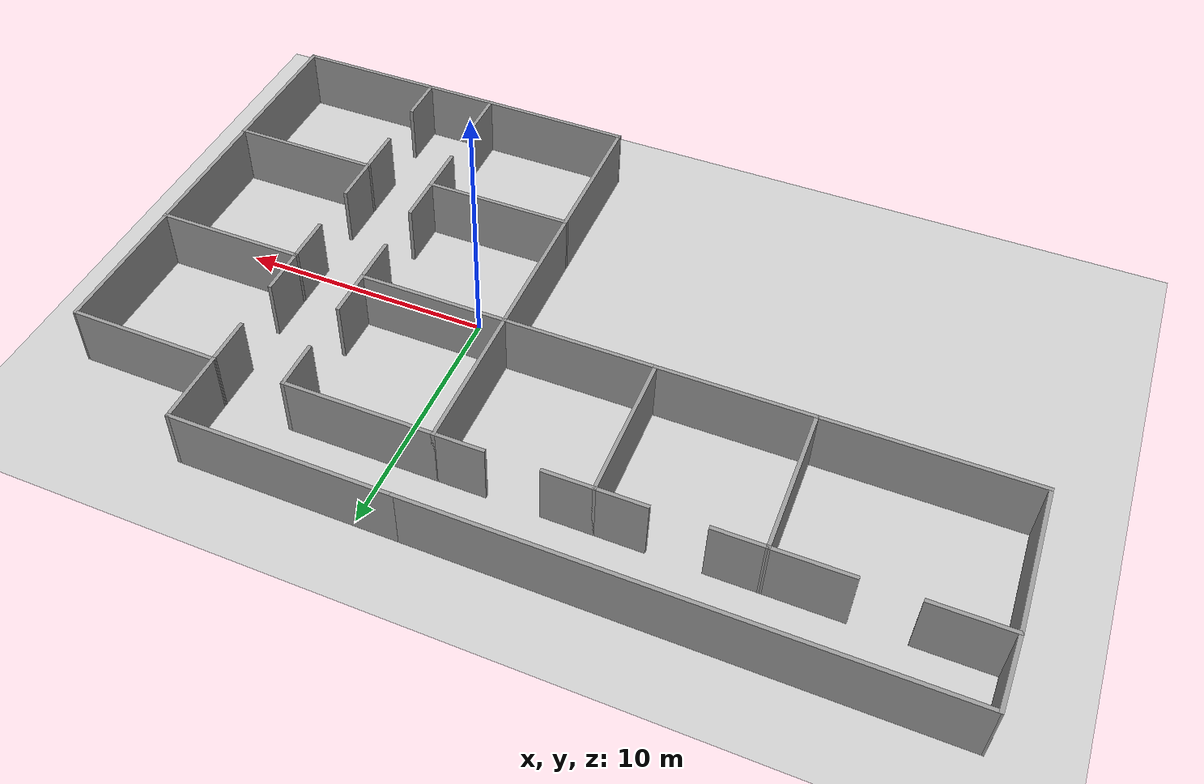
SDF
<?xml version="1.0" ?>
<sdf version="1.4">
  <world name="default">
    <include>
      <uri>model://sun</uri>
    </include>
    <!-- A ground plane -->
    <include>
      <uri>model://ground_plane</uri>
    </include>
    <include>
      <uri>model://asphalt_plane</uri>
    </include>
    <physics name='default_physics' default='0' type='ode'>
      <gravity>0 0 -9.8066</gravity>
      <ode>
        <solver>
          <type>quick</type>
          <iters>10</iters>
          <sor>1.3</sor>
          <use_dynamic_moi_rescaling>0</use_dynamic_moi_rescaling>
        </solver>
        <constraints>
          <cfm>0</cfm>
          <erp>0.2</erp>
          <contact_max_correcting_vel>100</contact_max_correcting_vel>
          <contact_surface_layer>0.001</contact_surface_layer>
        </constraints>
      </ode>
      <max_step_size>0.004</max_step_size>
      <real_time_factor>1</real_time_factor>
      <real_time_update_rate>250</real_time_update_rate>
      <magnetic_field>6.0e-6 2.3e-5 -4.2e-5</magnetic_field>
    </physics>
    <model name='Office_2'>
    <pose>-4.24252 -0.072373 0 0 -0 0</pose>
    <link name='Wall_1'>
      <collision name='Wall_1_Collision'>
        <geometry>
          <box>
            <size>6 0.15 2.5</size>
          </box>
        </geometry>
        <pose>0 0 1.25 0 -0 0</pose>
      </collision>
      <visual name='Wall_1_Visual'>
        <pose>0 0 1.25 0 -0 0</pose>
        <geometry>
          <box>
            <size>6 0.15 2.5</size>
          </box>
        </geometry>
        <material>
          <script>
            <uri>file://media/materials/scripts/gazebo.material</uri>
            <name>Gazebo/Grey</name>
          </script>
          <ambient>1 1 1 1</ambient>
        </material>
        <meta>
          <layer>0</layer>
        </meta>
      </visual>
      <pose>2.48957 -1.41258 0 0 -0 1.5708</pose>
    </link>
    <link name='Wall_10'>
      <collision name='Wall_10_Collision'>
        <geometry>
          <box>
            <size>6 0.15 2.5</size>
          </box>
        </geometry>
        <pose>0 0 1.25 0 -0 0</pose>
      </collision>
      <visual name='Wall_10_Visual'>
        <pose>0 0 1.25 0 -0 0</pose>
        <geometry>
          <box>
            <size>6 0.15 2.5</size>
          </box>
        </geometry>
        <material>
          <script>
            <uri>file://media/materials/scripts/gazebo.material</uri>
            <name>Gazebo/Grey</name>
          </script>
          <ambient>1 1 1 1</ambient>
        </material>
        <meta>
          <layer>0</layer>
        </meta>
      </visual>
      <pose>2.48957 4.43742 0 0 -0 1.5708</pose>
    </link>
    <link name='Wall_107'>
      <collision name='Wall_107_Collision'>
        <geometry>
          <box>
            <size>6 0.15 2.5</size>
          </box>
        </geometry>
        <pose>0 0 1.25 0 -0 0</pose>
      </collision>
      <visual name='Wall_107_Visual'>
        <pose>0 0 1.25 0 -0 0</pose>
        <geometry>
          <box>
            <size>6 0.15 2.5</size>
          </box>
        </geometry>
        <material>
          <script>
            <uri>file://media/materials/scripts/gazebo.material</uri>
            <name>Gazebo/Grey</name>
          </script>
          <ambient>1 1 1 1</ambient>
        </material>
        <meta>
          <layer>0</layer>
        </meta>
      </visual>
      <pose>-6.28543 1.51242 0 0 -0 3.14159</pose>
    </link>
    <link name='Wall_108'>
      <collision name='Wall_108_Collision'>
        <geometry>
          <box>
            <size>6.00008 0.15 2.5</size>
          </box>
        </geometry>
        <pose>0 0 1.25 0 -0 0</pose>
      </collision>
      <visual name='Wall_108_Visual'>
        <pose>0 0 1.25 0 -0 0</pose>
        <geometry>
          <box>
            <size>6.00008 0.15 2.5</size>
          </box>
        </geometry>
        <material>
          <script>
            <uri>file://media/materials/scripts/gazebo.material</uri>
            <name>Gazebo/Grey</name>
          </script>
          <ambient>1 1 1 1</ambient>
        </material>
        <meta>
          <layer>0</layer>
        </meta>
      </visual>
      <pose>-9.22572 4.43742 0 0 -0 1.57603</pose>
    </link>
    <link name='Wall_111'>
      <collision name='Wall_111_Collision'>
        <geometry>
          <box>
            <size>8 0.15 2.5</size>
          </box>
        </geometry>
        <pose>0 0 1.25 0 -0 0</pose>
      </collision>
      <visual name='Wall_111_Visual'>
        <pose>0 0 1.25 0 -0 0</pose>
        <geometry>
          <box>
            <size>8 0.15 2.5</size>
          </box>
        </geometry>
        <material>
          <script>
            <uri>file://media/materials/scripts/gazebo.material</uri>
            <name>Gazebo/Grey</name>
          </script>
          <ambient>1 1 1 1</ambient>
        </material>
        <meta>
          <layer>0</layer>
        </meta>
      </visual>
      <pose>-13.1354 1.51242 0 0 -0 3.14159</pose>
    </link>
    <link name='Wall_112'>
      <collision name='Wall_112_Collision'>
        <geometry>
          <box>
            <size>6.00008 0.15 2.5</size>
          </box>
        </geometry>
        <pose>0 0 1.25 0 -0 0</pose>
      </collision>
      <visual name='Wall_112_Visual'>
        <pose>0 0 1.25 0 -0 0</pose>
        <geometry>
          <box>
            <size>6.00008 0.15 2.5</size>
          </box>
        </geometry>
        <material>
          <script>
            <uri>file://media/materials/scripts/gazebo.material</uri>
            <name>Gazebo/Grey</name>
          </script>
          <ambient>1 1 1 1</ambient>
        </material>
        <meta>
          <layer>0</layer>
        </meta>
      </visual>
      <pose>-17.0757 4.43742 0 0 -0 1.57603</pose>
    </link>
    <link name='Wall_115'>
      <collision name='Wall_115_Collision'>
        <geometry>
          <box>
            <size>19.75 0.15 2.5</size>
          </box>
        </geometry>
        <pose>0 0 1.25 0 -0 0</pose>
      </collision>
      <visual name='Wall_115_Visual'>
        <pose>0 0 1.25 0 -0 0</pose>
        <geometry>
          <box>
            <size>19.75 0.15 2.5</size>
          </box>
        </geometry>
        <material>
          <script>
            <uri>file://media/materials/scripts/gazebo.material</uri>
            <name>Gazebo/Grey</name>
          </script>
          <ambient>1 1 1 1</ambient>
        </material>
        <meta>
          <layer>0</layer>
        </meta>
      </visual>
      <pose>-7.21043 10.2124 0 0 -0 3.14159</pose>
    </link>
    <link name='Wall_116'>
      <collision name='Wall_116_Collision'>
        <geometry>
          <box>
            <size>3.00114 0.15 2.5</size>
          </box>
        </geometry>
        <pose>0 0 1.25 0 -0 0</pose>
      </collision>
      <visual name='Wall_116_Visual'>
        <pose>0 0 1.25 0 -0 0</pose>
        <geometry>
          <box>
            <size>3.00114 0.15 2.5</size>
          </box>
        </geometry>
        <material>
          <script>
            <uri>file://media/materials/scripts/gazebo.material</uri>
            <name>Gazebo/Grey</name>
          </script>
          <ambient>1 1 1 1</ambient>
        </material>
        <meta>
          <layer>0</layer>
        </meta>
      </visual>
      <pose>-17.0507 8.78742 0 0 -0 -1.59907</pose>
    </link>
    <link name='Wall_118'>
      <collision name='Wall_118_Collision'>
        <geometry>
          <box>
            <size>6 0.15 2.5</size>
          </box>
        </geometry>
        <pose>0 0 1.25 0 -0 0</pose>
      </collision>
      <visual name='Wall_118_Visual'>
        <pose>0 0 1.25 0 -0 0</pose>
        <geometry>
          <box>
            <size>6 0.15 2.5</size>
          </box>
        </geometry>
        <material>
          <script>
            <uri>file://media/materials/scripts/gazebo.material</uri>
            <name>Gazebo/Grey</name>
          </script>
          <ambient>1 1 1 1</ambient>
        </material>
        <meta>
          <layer>0</layer>
        </meta>
      </visual>
      <pose>5.41457 7.36242 0 0 -0 0</pose>
    </link>
    <link name='Wall_120'>
      <collision name='Wall_120_Collision'>
        <geometry>
          <box>
            <size>2 0.15 2.5</size>
          </box>
        </geometry>
        <pose>0 0 1.25 0 -0 0</pose>
      </collision>
      <visual name='Wall_120_Visual'>
        <pose>0 0 1.25 0 -0 0</pose>
        <geometry>
          <box>
            <size>2 0.15 2.5</size>
          </box>
        </geometry>
        <material>
          <script>
            <uri>file://media/materials/scripts/gazebo.material</uri>
            <name>Gazebo/Grey</name>
          </script>
          <ambient>1 1 1 1</ambient>
        </material>
        <meta>
          <layer>0</layer>
        </meta>
      </visual>
      <pose>-2.43543 7.36242 0 0 -0 0</pose>
    </link>
    <link name='Wall_123'>
      <collision name='Wall_123_Collision'>
        <geometry>
          <box>
            <size>2 0.15 2.5</size>
          </box>
        </geometry>
        <pose>0 0 1.25 0 -0 0</pose>
      </collision>
      <visual name='Wall_123_Visual'>
        <pose>0 0 1.25 0 -0 0</pose>
        <geometry>
          <box>
            <size>2 0.15 2.5</size>
          </box>
        </geometry>
        <material>
          <script>
            <uri>file://media/materials/scripts/gazebo.material</uri>
            <name>Gazebo/Grey</name>
          </script>
          <ambient>1 1 1 1</ambient>
        </material>
        <meta>
          <layer>0</layer>
        </meta>
      </visual>
      <pose>1.56457 7.36242 0 0 -0 3.14159</pose>
    </link>
    <link name='Wall_125'>
      <collision name='Wall_125_Collision'>
        <geometry>
          <box>
            <size>2.03059 0.15 2.5</size>
          </box>
        </geometry>
        <pose>0 0 1.25 0 -0 0</pose>
      </collision>
      <visual name='Wall_125_Visual'>
        <pose>0 0 1.25 0 -0 0</pose>
        <geometry>
          <box>
            <size>2.03059 0.15 2.5</size>
          </box>
        </geometry>
        <material>
          <script>
            <uri>file://media/materials/scripts/gazebo.material</uri>
            <name>Gazebo/Grey</name>
          </script>
          <ambient>1 1 1 1</ambient>
        </material>
        <meta>
          <layer>0</layer>
        </meta>
      </visual>
      <pose>-8.30072 7.36242 0 0 -0 0</pose>
    </link>
    <link name='Wall_127'>
      <collision name='Wall_127_Collision'>
        <geometry>
          <box>
            <size>2 0.15 2.5</size>
          </box>
        </geometry>
        <pose>0 0 1.25 0 -0 0</pose>
      </collision>
      <visual name='Wall_127_Visual'>
        <pose>0 0 1.25 0 -0 0</pose>
        <geometry>
          <box>
            <size>2 0.15 2.5</size>
          </box>
        </geometry>
        <material>
          <script>
            <uri>file://media/materials/scripts/gazebo.material</uri>
            <name>Gazebo/Grey</name>
          </script>
          <ambient>1 1 1 1</ambient>
        </material>
        <meta>
          <layer>0</layer>
        </meta>
      </visual>
      <pose>-4.28543 7.36242 0 0 -0 3.14159</pose>
    </link>
    <link name='Wall_129'>
      <collision name='Wall_129_Collision'>
        <geometry>
          <box>
            <size>3 0.15 2.5</size>
          </box>
        </geometry>
        <pose>0 0 1.25 0 -0 0</pose>
      </collision>
      <visual name='Wall_129_Visual'>
        <pose>0 0 1.25 0 -0 0</pose>
        <geometry>
          <box>
            <size>3 0.15 2.5</size>
          </box>
        </geometry>
        <material>
          <script>
            <uri>file://media/materials/scripts/gazebo.material</uri>
            <name>Gazebo/Grey</name>
          </script>
          <ambient>1 1 1 1</ambient>
        </material>
        <meta>
          <layer>0</layer>
        </meta>
      </visual>
      <pose>-10.666 7.36242 0 0 -0 3.14159</pose>
    </link>
    <link name='Wall_131'>
      <collision name='Wall_131_Collision'>
        <geometry>
          <box>
            <size>3 0.15 2.5</size>
          </box>
        </geometry>
        <pose>0 0 1.25 0 -0 0</pose>
      </collision>
      <visual name='Wall_131_Visual'>
        <pose>0 0 1.25 0 -0 0</pose>
        <geometry>
          <box>
            <size>3 0.15 2.5</size>
          </box>
        </geometry>
        <material>
          <script>
            <uri>file://media/materials/scripts/gazebo.material</uri>
            <name>Gazebo/Grey</name>
          </script>
          <ambient>1 1 1 1</ambient>
        </material>
        <meta>
          <layer>0</layer>
        </meta>
      </visual>
      <pose>-15.666 7.36242 0 0 -0 0</pose>
    </link>
    <link name='Wall_14'>
      <collision name='Wall_14_Collision'>
        <geometry>
          <box>
            <size>3 0.15 2.5</size>
          </box>
        </geometry>
        <pose>0 0 1.25 0 -0 0</pose>
      </collision>
      <visual name='Wall_14_Visual'>
        <pose>0 0 1.25 0 -0 0</pose>
        <geometry>
          <box>
            <size>3 0.15 2.5</size>
          </box>
        </geometry>
        <material>
          <script>
            <uri>file://media/materials/scripts/gazebo.material</uri>
            <name>Gazebo/Grey</name>
          </script>
          <ambient>1 1 1 1</ambient>
        </material>
        <meta>
          <layer>0</layer>
        </meta>
      </visual>
      <pose>9.81777 -10.2142 0 0 -0 0</pose>
    </link>
    <link name='Wall_19'>
      <collision name='Wall_19_Collision'>
        <geometry>
          <box>
            <size>6 0.15 2.5</size>
          </box>
        </geometry>
        <pose>0 0 1.25 0 -0 0</pose>
      </collision>
      <visual name='Wall_19_Visual'>
        <pose>0 0 1.25 0 -0 0</pose>
        <geometry>
          <box>
            <size>6 0.15 2.5</size>
          </box>
        </geometry>
        <material>
          <script>
            <uri>file://media/materials/scripts/gazebo.material</uri>
            <name>Gazebo/Grey</name>
          </script>
          <ambient>1 1 1 1</ambient>
        </material>
        <meta>
          <layer>0</layer>
        </meta>
      </visual>
      <pose>14.1678 -10.2142 0 0 -0 0</pose>
    </link>
    <link name='Wall_2'>
      <collision name='Wall_2_Collision'>
        <geometry>
          <box>
            <size>6 0.15 2.5</size>
          </box>
        </geometry>
        <pose>0 0 1.25 0 -0 0</pose>
      </collision>
      <visual name='Wall_2_Visual'>
        <pose>0 0 1.25 0 -0 0</pose>
        <geometry>
          <box>
            <size>6 0.15 2.5</size>
          </box>
        </geometry>
        <material>
          <script>
            <uri>file://media/materials/scripts/gazebo.material</uri>
            <name>Gazebo/Grey</name>
          </script>
          <ambient>1 1 1 1</ambient>
        </material>
        <meta>
          <layer>0</layer>
        </meta>
      </visual>
      <pose>5.41457 1.51242 0 0 -0 0</pose>
    </link>
    <link name='Wall_20'>
      <collision name='Wall_20_Collision'>
        <geometry>
          <box>
            <size>6 0.15 2.5</size>
          </box>
        </geometry>
        <pose>0 0 1.25 0 -0 0</pose>
      </collision>
      <visual name='Wall_20_Visual'>
        <pose>0 0 1.25 0 -0 0</pose>
        <geometry>
          <box>
            <size>6 0.15 2.5</size>
          </box>
        </geometry>
        <material>
          <script>
            <uri>file://media/materials/scripts/gazebo.material</uri>
            <name>Gazebo/Grey</name>
          </script>
          <ambient>1 1 1 1</ambient>
        </material>
        <meta>
          <layer>0</layer>
        </meta>
      </visual>
      <pose>17.0928 -7.28918 0 0 -0 1.5708</pose>
    </link>
    <link name='Wall_21'>
      <collision name='Wall_21_Collision'>
        <geometry>
          <box>
            <size>6 0.15 2.5</size>
          </box>
        </geometry>
        <pose>0 0 1.25 0 -0 0</pose>
      </collision>
      <visual name='Wall_21_Visual'>
        <pose>0 0 1.25 0 -0 0</pose>
        <geometry>
          <box>
            <size>6 0.15 2.5</size>
          </box>
        </geometry>
        <material>
          <script>
            <uri>file://media/materials/scripts/gazebo.material</uri>
            <name>Gazebo/Grey</name>
          </script>
          <ambient>1 1 1 1</ambient>
        </material>
        <meta>
          <layer>0</layer>
        </meta>
      </visual>
      <pose>14.1678 -4.36418 0 0 -0 3.14159</pose>
    </link>
    <link name='Wall_23'>
      <collision name='Wall_23_Collision'>
        <geometry>
          <box>
            <size>6 0.15 2.5</size>
          </box>
        </geometry>
        <pose>0 0 1.25 0 -0 0</pose>
      </collision>
      <visual name='Wall_23_Visual'>
        <pose>0 0 1.25 0 -0 0</pose>
        <geometry>
          <box>
            <size>6 0.15 2.5</size>
          </box>
        </geometry>
        <material>
          <script>
            <uri>file://media/materials/scripts/gazebo.material</uri>
            <name>Gazebo/Grey</name>
          </script>
          <ambient>1 1 1 1</ambient>
        </material>
        <meta>
          <layer>0</layer>
        </meta>
      </visual>
      <pose>17.0928 -1.43918 0 0 -0 1.5708</pose>
    </link>
    <link name='Wall_24'>
      <collision name='Wall_24_Collision'>
        <geometry>
          <box>
            <size>6 0.15 2.5</size>
          </box>
        </geometry>
        <pose>0 0 1.25 0 -0 0</pose>
      </collision>
      <visual name='Wall_24_Visual'>
        <pose>0 0 1.25 0 -0 0</pose>
        <geometry>
          <box>
            <size>6 0.15 2.5</size>
          </box>
        </geometry>
        <material>
          <script>
            <uri>file://media/materials/scripts/gazebo.material</uri>
            <name>Gazebo/Grey</name>
          </script>
          <ambient>1 1 1 1</ambient>
        </material>
        <meta>
          <layer>0</layer>
        </meta>
      </visual>
      <pose>14.1678 1.48582 0 0 -0 3.14159</pose>
    </link>
    <link name='Wall_26'>
      <collision name='Wall_26_Collision'>
        <geometry>
          <box>
            <size>6 0.15 2.5</size>
          </box>
        </geometry>
        <pose>0 0 1.25 0 -0 0</pose>
      </collision>
      <visual name='Wall_26_Visual'>
        <pose>0 0 1.25 0 -0 0</pose>
        <geometry>
          <box>
            <size>6 0.15 2.5</size>
          </box>
        </geometry>
        <material>
          <script>
            <uri>file://media/materials/scripts/gazebo.material</uri>
            <name>Gazebo/Grey</name>
          </script>
          <ambient>1 1 1 1</ambient>
        </material>
        <meta>
          <layer>0</layer>
        </meta>
      </visual>
      <pose>17.0928 4.41082 0 0 -0 1.5708</pose>
    </link>
    <link name='Wall_27'>
      <collision name='Wall_27_Collision'>
        <geometry>
          <box>
            <size>6.05326 0.15 2.5</size>
          </box>
        </geometry>
        <pose>0 0 1.25 0 -0 0</pose>
      </collision>
      <visual name='Wall_27_Visual'>
        <pose>0 0 1.25 0 -0 0</pose>
        <geometry>
          <box>
            <size>6.05326 0.15 2.5</size>
          </box>
        </geometry>
        <material>
          <script>
            <uri>file://media/materials/scripts/gazebo.material</uri>
            <name>Gazebo/Grey</name>
          </script>
          <ambient>1 1 1 1</ambient>
        </material>
        <meta>
          <layer>0</layer>
        </meta>
      </visual>
      <pose>14.1412 7.34912 0 0 -0 3.13709</pose>
    </link>
    <link name='Wall_33'>
      <collision name='Wall_33_Collision'>
        <geometry>
          <box>
            <size>2 0.15 2.5</size>
          </box>
        </geometry>
        <pose>0 0 1.25 0 -0 0</pose>
      </collision>
      <visual name='Wall_33_Visual'>
        <pose>0 0 1.25 0 -0 0</pose>
        <geometry>
          <box>
            <size>2 0.15 2.5</size>
          </box>
        </geometry>
        <material>
          <script>
            <uri>file://media/materials/scripts/gazebo.material</uri>
            <name>Gazebo/Grey</name>
          </script>
          <ambient>1 1 1 1</ambient>
        </material>
        <meta>
          <layer>0</layer>
        </meta>
      </visual>
      <pose>8.33957 6.43742 0 0 -0 -1.5708</pose>
    </link>
    <link name='Wall_35'>
      <collision name='Wall_35_Collision'>
        <geometry>
          <box>
            <size>2 0.15 2.5</size>
          </box>
        </geometry>
        <pose>0 0 1.25 0 -0 0</pose>
      </collision>
      <visual name='Wall_35_Visual'>
        <pose>0 0 1.25 0 -0 0</pose>
        <geometry>
          <box>
            <size>2 0.15 2.5</size>
          </box>
        </geometry>
        <material>
          <script>
            <uri>file://media/materials/scripts/gazebo.material</uri>
            <name>Gazebo/Grey</name>
          </script>
          <ambient>1 1 1 1</ambient>
        </material>
        <meta>
          <layer>0</layer>
        </meta>
      </visual>
      <pose>8.33957 2.43742 0 0 -0 1.5708</pose>
    </link>
    <link name='Wall_37'>
      <collision name='Wall_37_Collision'>
        <geometry>
          <box>
            <size>2 0.15 2.5</size>
          </box>
        </geometry>
        <pose>0 0 1.25 0 -0 0</pose>
      </collision>
      <visual name='Wall_37_Visual'>
        <pose>0 0 1.25 0 -0 0</pose>
        <geometry>
          <box>
            <size>2 0.15 2.5</size>
          </box>
        </geometry>
        <material>
          <script>
            <uri>file://media/materials/scripts/gazebo.material</uri>
            <name>Gazebo/Grey</name>
          </script>
          <ambient>1 1 1 1</ambient>
        </material>
        <meta>
          <layer>0</layer>
        </meta>
      </visual>
      <pose>8.33957 0.587423 0 0 -0 -1.5708</pose>
    </link>
    <link name='Wall_39'>
      <collision name='Wall_39_Collision'>
        <geometry>
          <box>
            <size>2 0.15 2.5</size>
          </box>
        </geometry>
        <pose>0 0 1.25 0 -0 0</pose>
      </collision>
      <visual name='Wall_39_Visual'>
        <pose>0 0 1.25 0 -0 0</pose>
        <geometry>
          <box>
            <size>2 0.15 2.5</size>
          </box>
        </geometry>
        <material>
          <script>
            <uri>file://media/materials/scripts/gazebo.material</uri>
            <name>Gazebo/Grey</name>
          </script>
          <ambient>1 1 1 1</ambient>
        </material>
        <meta>
          <layer>0</layer>
        </meta>
      </visual>
      <pose>8.33957 -3.41258 0 0 -0 1.5708</pose>
    </link>
    <link name='Wall_4'>
      <collision name='Wall_4_Collision'>
        <geometry>
          <box>
            <size>6 0.15 2.5</size>
          </box>
        </geometry>
        <pose>0 0 1.25 0 -0 0</pose>
      </collision>
      <visual name='Wall_4_Visual'>
        <pose>0 0 1.25 0 -0 0</pose>
        <geometry>
          <box>
            <size>6 0.15 2.5</size>
          </box>
        </geometry>
        <material>
          <script>
            <uri>file://media/materials/scripts/gazebo.material</uri>
            <name>Gazebo/Grey</name>
          </script>
          <ambient>1 1 1 1</ambient>
        </material>
        <meta>
          <layer>0</layer>
        </meta>
      </visual>
      <pose>5.41457 -4.33758 0 0 -0 3.14159</pose>
    </link>
    <link name='Wall_41'>
      <collision name='Wall_41_Collision'>
        <geometry>
          <box>
            <size>2 0.15 2.5</size>
          </box>
        </geometry>
        <pose>0 0 1.25 0 -0 0</pose>
      </collision>
      <visual name='Wall_41_Visual'>
        <pose>0 0 1.25 0 -0 0</pose>
        <geometry>
          <box>
            <size>2 0.15 2.5</size>
          </box>
        </geometry>
        <material>
          <script>
            <uri>file://media/materials/scripts/gazebo.material</uri>
            <name>Gazebo/Grey</name>
          </script>
          <ambient>1 1 1 1</ambient>
        </material>
        <meta>
          <layer>0</layer>
        </meta>
      </visual>
      <pose>8.33957 -5.26258 0 0 -0 -1.5708</pose>
    </link>
    <link name='Wall_43'>
      <collision name='Wall_43_Collision'>
        <geometry>
          <box>
            <size>2 0.15 2.5</size>
          </box>
        </geometry>
        <pose>0 0 1.25 0 -0 0</pose>
      </collision>
      <visual name='Wall_43_Visual'>
        <pose>0 0 1.25 0 -0 0</pose>
        <geometry>
          <box>
            <size>2 0.15 2.5</size>
          </box>
        </geometry>
        <material>
          <script>
            <uri>file://media/materials/scripts/gazebo.material</uri>
            <name>Gazebo/Grey</name>
          </script>
          <ambient>1 1 1 1</ambient>
        </material>
        <meta>
          <layer>0</layer>
        </meta>
      </visual>
      <pose>8.39277 -9.28918 0 0 -0 1.5708</pose>
    </link>
    <link name='Wall_45'>
      <collision name='Wall_45_Collision'>
        <geometry>
          <box>
            <size>2 0.15 2.5</size>
          </box>
        </geometry>
        <pose>0 0 1.25 0 -0 0</pose>
      </collision>
      <visual name='Wall_45_Visual'>
        <pose>0 0 1.25 0 -0 0</pose>
        <geometry>
          <box>
            <size>2 0.15 2.5</size>
          </box>
        </geometry>
        <material>
          <script>
            <uri>file://media/materials/scripts/gazebo.material</uri>
            <name>Gazebo/Grey</name>
          </script>
          <ambient>1 1 1 1</ambient>
        </material>
        <meta>
          <layer>0</layer>
        </meta>
      </visual>
      <pose>11.2428 -5.28918 0 0 -0 -1.5708</pose>
    </link>
    <link name='Wall_47'>
      <collision name='Wall_47_Collision'>
        <geometry>
          <box>
            <size>2 0.15 2.5</size>
          </box>
        </geometry>
        <pose>0 0 1.25 0 -0 0</pose>
      </collision>
      <visual name='Wall_47_Visual'>
        <pose>0 0 1.25 0 -0 0</pose>
        <geometry>
          <box>
            <size>2 0.15 2.5</size>
          </box>
        </geometry>
        <material>
          <script>
            <uri>file://media/materials/scripts/gazebo.material</uri>
            <name>Gazebo/Grey</name>
          </script>
          <ambient>1 1 1 1</ambient>
        </material>
        <meta>
          <layer>0</layer>
        </meta>
      </visual>
      <pose>11.2428 -9.28918 0 0 -0 1.5708</pose>
    </link>
    <link name='Wall_49'>
      <collision name='Wall_49_Collision'>
        <geometry>
          <box>
            <size>2 0.15 2.5</size>
          </box>
        </geometry>
        <pose>0 0 1.25 0 -0 0</pose>
      </collision>
      <visual name='Wall_49_Visual'>
        <pose>0 0 1.25 0 -0 0</pose>
        <geometry>
          <box>
            <size>2 0.15 2.5</size>
          </box>
        </geometry>
        <material>
          <script>
            <uri>file://media/materials/scripts/gazebo.material</uri>
            <name>Gazebo/Grey</name>
          </script>
          <ambient>1 1 1 1</ambient>
        </material>
        <meta>
          <layer>0</layer>
        </meta>
      </visual>
      <pose>11.2428 -3.43918 0 0 -0 1.5708</pose>
    </link>
    <link name='Wall_51'>
      <collision name='Wall_51_Collision'>
        <geometry>
          <box>
            <size>2 0.15 2.5</size>
          </box>
        </geometry>
        <pose>0 0 1.25 0 -0 0</pose>
      </collision>
      <visual name='Wall_51_Visual'>
        <pose>0 0 1.25 0 -0 0</pose>
        <geometry>
          <box>
            <size>2 0.15 2.5</size>
          </box>
        </geometry>
        <material>
          <script>
            <uri>file://media/materials/scripts/gazebo.material</uri>
            <name>Gazebo/Grey</name>
          </script>
          <ambient>1 1 1 1</ambient>
        </material>
        <meta>
          <layer>0</layer>
        </meta>
      </visual>
      <pose>11.2428 0.560823 0 0 -0 -1.5708</pose>
    </link>
    <link name='Wall_53'>
      <collision name='Wall_53_Collision'>
        <geometry>
          <box>
            <size>2 0.15 2.5</size>
          </box>
        </geometry>
        <pose>0 0 1.25 0 -0 0</pose>
      </collision>
      <visual name='Wall_53_Visual'>
        <pose>0 0 1.25 0 -0 0</pose>
        <geometry>
          <box>
            <size>2 0.15 2.5</size>
          </box>
        </geometry>
        <material>
          <script>
            <uri>file://media/materials/scripts/gazebo.material</uri>
            <name>Gazebo/Grey</name>
          </script>
          <ambient>1 1 1 1</ambient>
        </material>
        <meta>
          <layer>0</layer>
        </meta>
      </visual>
      <pose>11.1896 6.43742 0 0 -0 -1.5708</pose>
    </link>
    <link name='Wall_55'>
      <collision name='Wall_55_Collision'>
        <geometry>
          <box>
            <size>2 0.15 2.5</size>
          </box>
        </geometry>
        <pose>0 0 1.25 0 -0 0</pose>
      </collision>
      <visual name='Wall_55_Visual'>
        <pose>0 0 1.25 0 -0 0</pose>
        <geometry>
          <box>
            <size>2 0.15 2.5</size>
          </box>
        </geometry>
        <material>
          <script>
            <uri>file://media/materials/scripts/gazebo.material</uri>
            <name>Gazebo/Grey</name>
          </script>
          <ambient>1 1 1 1</ambient>
        </material>
        <meta>
          <layer>0</layer>
        </meta>
      </visual>
      <pose>11.2428 2.41082 0 0 -0 1.5708</pose>
    </link>
    <link name='Wall_6'>
      <collision name='Wall_6_Collision'>
        <geometry>
          <box>
            <size>6 0.15 2.5</size>
          </box>
        </geometry>
        <pose>0 0 1.25 0 -0 0</pose>
      </collision>
      <visual name='Wall_6_Visual'>
        <pose>0 0 1.25 0 -0 0</pose>
        <geometry>
          <box>
            <size>6 0.15 2.5</size>
          </box>
        </geometry>
        <material>
          <script>
            <uri>file://media/materials/scripts/gazebo.material</uri>
            <name>Gazebo/Grey</name>
          </script>
          <ambient>1 1 1 1</ambient>
        </material>
        <meta>
          <layer>0</layer>
        </meta>
      </visual>
      <pose>2.48957 -7.26258 0 0 -0 -1.5708</pose>
    </link>
    <link name='Wall_63'>
      <collision name='Wall_63_Collision'>
        <geometry>
          <box>
            <size>3 0.15 2.5</size>
          </box>
        </geometry>
        <pose>0 0 1.25 0 -0 0</pose>
      </collision>
      <visual name='Wall_63_Visual'>
        <pose>0 0 1.25 0 -0 0</pose>
        <geometry>
          <box>
            <size>3 0.15 2.5</size>
          </box>
        </geometry>
        <material>
          <script>
            <uri>file://media/materials/scripts/gazebo.material</uri>
            <name>Gazebo/Grey</name>
          </script>
          <ambient>1 1 1 1</ambient>
        </material>
        <meta>
          <layer>0</layer>
        </meta>
      </visual>
      <pose>11.1896 8.78742 0 0 -0 1.5708</pose>
    </link>
    <link name='Wall_64'>
      <collision name='Wall_64_Collision'>
        <geometry>
          <box>
            <size>8.75 0.15 2.5</size>
          </box>
        </geometry>
        <pose>0 0 1.25 0 -0 0</pose>
      </collision>
      <visual name='Wall_64_Visual'>
        <pose>0 0 1.25 0 -0 0</pose>
        <geometry>
          <box>
            <size>8.75 0.15 2.5</size>
          </box>
        </geometry>
        <material>
          <script>
            <uri>file://media/materials/scripts/gazebo.material</uri>
            <name>Gazebo/Grey</name>
          </script>
          <ambient>1 1 1 1</ambient>
        </material>
        <meta>
          <layer>0</layer>
        </meta>
      </visual>
      <pose>6.88957 10.2124 0 0 -0 3.14159</pose>
    </link>
    <link name='Wall_67'>
      <collision name='Wall_67_Collision'>
        <geometry>
          <box>
            <size>6 0.15 2.5</size>
          </box>
        </geometry>
        <pose>0 0 1.25 0 -0 0</pose>
      </collision>
      <visual name='Wall_67_Visual'>
        <pose>0 0 1.25 0 -0 0</pose>
        <geometry>
          <box>
            <size>6 0.15 2.5</size>
          </box>
        </geometry>
        <material>
          <script>
            <uri>file://media/materials/scripts/gazebo.material</uri>
            <name>Gazebo/Grey</name>
          </script>
          <ambient>1 1 1 1</ambient>
        </material>
        <meta>
          <layer>0</layer>
        </meta>
      </visual>
      <pose>-3.36043 4.43742 0 0 -0 -1.5708</pose>
    </link>
    <link name='Wall_68'>
      <collision name='Wall_68_Collision'>
        <geometry>
          <box>
            <size>6 0.15 2.5</size>
          </box>
        </geometry>
        <pose>0 0 1.25 0 -0 0</pose>
      </collision>
      <visual name='Wall_68_Visual'>
        <pose>0 0 1.25 0 -0 0</pose>
        <geometry>
          <box>
            <size>6 0.15 2.5</size>
          </box>
        </geometry>
        <material>
          <script>
            <uri>file://media/materials/scripts/gazebo.material</uri>
            <name>Gazebo/Grey</name>
          </script>
          <ambient>1 1 1 1</ambient>
        </material>
        <meta>
          <layer>0</layer>
        </meta>
      </visual>
      <pose>-0.435429 1.51242 0 0 -0 0</pose>
    </link>
    <link name='Wall_7'>
      <collision name='Wall_7_Collision'>
        <geometry>
          <box>
            <size>6.05326 0.15 2.5</size>
          </box>
        </geometry>
        <pose>0 0 1.25 0 -0 0</pose>
      </collision>
      <visual name='Wall_7_Visual'>
        <pose>0 0 1.25 0 -0 0</pose>
        <geometry>
          <box>
            <size>6.05326 0.15 2.5</size>
          </box>
        </geometry>
        <material>
          <script>
            <uri>file://media/materials/scripts/gazebo.material</uri>
            <name>Gazebo/Grey</name>
          </script>
          <ambient>1 1 1 1</ambient>
        </material>
        <meta>
          <layer>0</layer>
        </meta>
      </visual>
      <pose>5.44117 -10.2009 0 0 -0 -0.004506</pose>
    </link>
    <static>1</static>
  </model>
    <light type="directional" name="my_light">
      <pose>0 0 30 0 0 0</pose>
      <diffuse>.5 .5 .5 1</diffuse>
      <specular>.1 .1 .1 1</specular>
      <attenuation>
        <range>200</range>
      </attenuation>
      <direction>0 0 -1</direction>
      <cast_shadows>false</cast_shadows>
    </light>
  </world>
</sdf>
